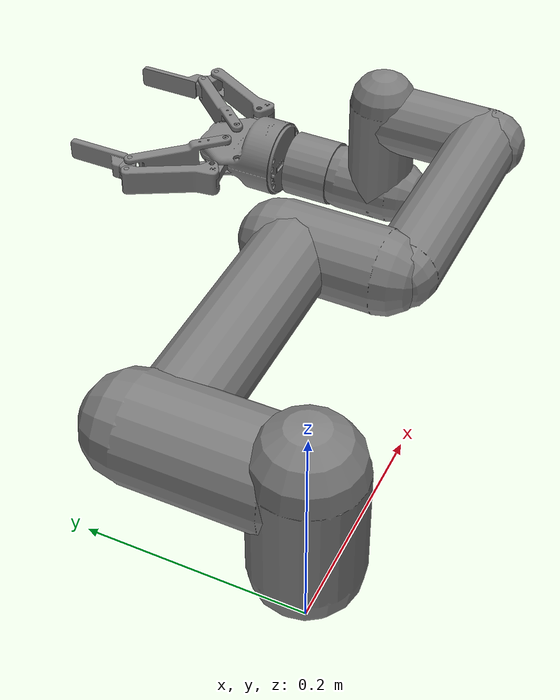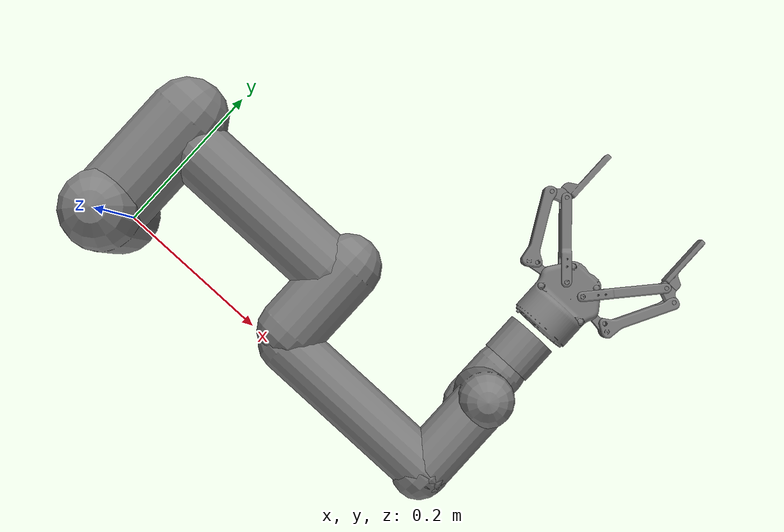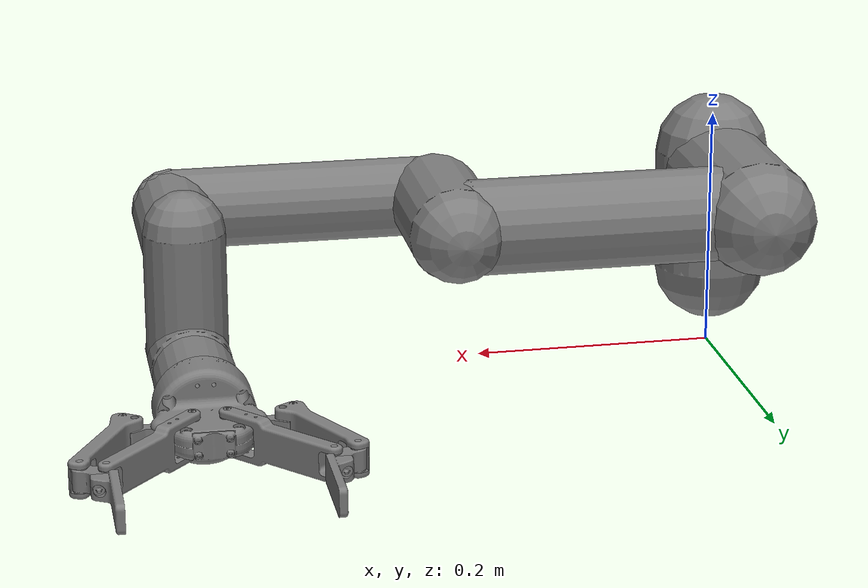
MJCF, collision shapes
<mujoco model="ur3e">
  <compiler angle="radian" meshdir="assets" autolimits="true"/>

  <option integrator="implicitfast"/>

  <default>
    <default class="ur3e">
      <material specular="0.5" shininess="0.25"/>
      <joint axis="0 1 0" range="-6.28319 6.28319" armature="0.1"/>
      <general gaintype="fixed" biastype="affine" ctrlrange="-6.2831 6.2831"/>
      <default class="size2">
        <general  gainprm="1000" biasprm="0 -1000 -200" forcerange="-56 56"/>
      </default>
      <default class="size1">
        <default class="size1_limited">
          <joint range="-3.14159 3.14159"/>
          <general gainprm="500" biasprm="0 -500 -100" ctrlrange="-3.14159 3.14159" forcerange="-28 28"/>
        </default>
      </default>
      <default class="size0">
        <general gainprm="200" biasprm="0 -200 -40" forcerange="-12 12"/>
      </default>
      <default class="visual">
        <geom type="mesh" contype="0" conaffinity="0" group="2"/>
      </default>
      <default class="collision">
        <geom type="capsule" group="3"/>
        <default class="eef_collision">
          <geom type="cylinder"/>
        </default>
      </default>
      <site size="0.001" rgba="0.5 0.5 0.5 0.3" group="4"/>
    </default>

    <default class="2f140">
      <mesh scale="0.001 0.001 0.001"/>
      <general biastype="affine"/>

      <joint axis="0 1 0"/>
      <default class="driver">
        <joint range="0 0.8" armature="0.005" damping="0.1" solimplimit="0.95 0.99 0.001" solreflimit="0.005 1"/>
      </default>
      <default class="follower">
        <joint range="-0.872664 0.872664"  solimplimit="0.95 0.99 0.001" solreflimit="0.005 1"/>
      </default>
      <default class="spring_link">
        <joint range="-0.29670597283 0.8" stiffness="0.05 " springref="2.8" damping="0.125"/>
      </default>
      <default class="coupler">
        <joint range="-1.57 1.57" solimplimit="0.95 0.99 0.001" solreflimit="0.005 1"/>
      </default>

      <default class="visual_gripper">
        <geom type="mesh" contype="0" conaffinity="0" group="2"/>
      </default>
      <default class="collision_gripper">
        <geom type="mesh" group="3"/>
        <default class="pad_box1">
          <geom mass="0" type="box" pos="0 -0.0026 0.028125" size="0.011 0.004 0.009375" friction="0.7"
            solimp="0.95 0.99 0.001" solref="0.004 1" priority="1" rgba="0.55 0.55 0.55 1"/>
        </default>
        <default class="pad_box2">
          <geom mass="0" type="box" pos="0 -0.0026 0.009375" size="0.011 0.004 0.009375" friction="0.6"
            solimp="0.95 0.99 0.001" solref="0.004 1" priority="1" rgba="0.45 0.45 0.45 1"/>
        </default>
      </default>
    </default>

  </default>

  <asset>
    <material class="ur3e" name="black" rgba="0.033 0.033 0.033 1"/>
    <material class="ur3e" name="jointgray" rgba="0.278 0.278 0.278 1"/>
    <material class="ur3e" name="linkgray" rgba="0.82 0.82 0.82 1"/>
    <material class="ur3e" name="urblue" rgba="0.49 0.678 0.8 1"/>

    <mesh file="base_0.obj"/>
    <mesh file="base_1.obj"/>
    <mesh file="shoulder_0.obj"/>
    <mesh file="shoulder_1.obj"/>
    <mesh file="shoulder_2.obj"/>
    <mesh file="upperarm_0.obj"/>
    <mesh file="upperarm_1.obj"/>
    <mesh file="upperarm_2.obj"/>
    <mesh file="upperarm_3.obj"/>
    <mesh file="forearm_0.obj"/>
    <mesh file="forearm_1.obj"/>
    <mesh file="forearm_2.obj"/>
    <mesh file="forearm_3.obj"/>
    <mesh file="wrist1_0.obj"/>
    <mesh file="wrist1_1.obj"/>
    <mesh file="wrist1_2.obj"/>
    <mesh file="wrist2_0.obj"/>
    <mesh file="wrist2_1.obj"/>
    <mesh file="wrist2_2.obj"/>
    <mesh file="wrist3.obj"/>

        <!-- gripper -->
    <material name="metal" specular="0.5" shininess="0.25" rgba="0.58 0.58 0.58 1"/>
    <material name="silicone" specular="0.5" shininess="0.25" rgba="0.1882 0.1882 0.1882 1"/>
    <material name="gray" specular="0.5" shininess="0.25" rgba="0.4627 0.4627 0.4627 1"/>

    <mesh class="2f140" name="base_mount" file="base_mount_zeroed.obj"/>
    <mesh class="2f140" name="base" file="base_zeroed.obj"/>
    <mesh class="2f140" name="driver" file="driver_zeroed.obj"/>
    <mesh class="2f140" name="coupler" file="coupler_zeroed.obj"/>
    <mesh class="2f140" name="follower" file="follower_zeroed.obj"/>
    <mesh class="2f140" name="pad" file="pad_zeroed.obj"/>
    <mesh class="2f140" name="spring_link" file="spring_link_zeroed.obj"/>

  </asset>

  <worldbody>
    <light name="spotlight" mode="targetbodycom" target="wrist_3_link" pos="0 -1 2"/>
    <body name="base" childclass="ur3e">
      <inertial mass="2" pos="0 0 0" diaginertia="0.0030532 0.0030532 0.005625"/>
      <geom mesh="base_0" material="jointgray" class="visual"/>
      <geom mesh="base_1" material="black" class="visual"/>
      <body name="shoulder_link" pos="0 0 0.152">
        <inertial mass="2" pos="0 0 0" diaginertia="0.00809316 0.00809316 0.005625"/>
        <joint name="shoulder_pan_joint" class="size2" axis="0 0 1"/>
        <geom mesh="shoulder_0" material="urblue" class="visual"/>
        <geom mesh="shoulder_1" material="black" class="visual"/>
        <geom mesh="shoulder_2" material="jointgray" class="visual"/>
        <geom class="collision" size="0.047 0.05" pos="0 0 -0.032"/>
        <body name="upper_arm_link" pos="0 0.12 0" quat="1 0 1 0">
          <inertial mass="3.42" pos="0 0 0.122" diaginertia="0.0217285 0.0217285 0.00961875"/>
          <joint name="shoulder_lift_joint" class="size2"/>
          <geom mesh="upperarm_0" material="black" class="visual"/>
          <geom mesh="upperarm_1" material="urblue" class="visual"/>
          <geom mesh="upperarm_2" material="jointgray" class="visual"/>
          <geom mesh="upperarm_3" material="linkgray" class="visual"/>
          <geom class="collision" size="0.046 0.06" pos="0 -0.04 0" quat="1 1 0 0"/>
          <geom class="collision" size="0.038 0.11" pos="0 0 0.12"/>
          <body name="forearm_link" pos="0 -0.093 0.244">
            <inertial mass="1.26" pos="0 0 0.10625" diaginertia="0.00654457 0.00654457 0.00354375"/>
            <joint name="elbow_joint" class="size1_limited"/>
            <geom mesh="forearm_0" material="urblue" class="visual"/>
            <geom mesh="forearm_1" material="linkgray" class="visual"/>
            <geom mesh="forearm_2" material="black" class="visual"/>
            <geom mesh="forearm_3" material="jointgray" class="visual"/>
            <geom class="collision" size="0.038 0.048" pos="0 0.062 0" quat="1 1 0 0"/>
            <geom class="collision" size="0.032 0.103" pos="0 0 0.11"/>
            <body name="wrist_1_link" pos="0.0005 0 0.2125" quat="1 0 1 0">
              <inertial mass="0.8" pos="0 0.104 0" diaginertia="0.00225 0.002085 0.002085"/>
              <joint name="wrist_1_joint" class="size0"/>
              <geom mesh="wrist1_0" material="jointgray" class="visual"/>
              <geom mesh="wrist1_1" material="urblue" class="visual"/>
              <geom mesh="wrist1_2" material="black" class="visual"/>
              <geom class="collision" size="0.032 0.05" pos="0 0.045 0" quat="1 1 0 0"/>
              <body name="wrist_2_link" pos="0 0.104 0">
                <inertial mass="0.8" pos="0 0 0.085" diaginertia="0.00225 0.002085 0.002085"/>
                <joint name="wrist_2_joint" axis="0 0 1"/>
                <geom mesh="wrist2_0" material="jointgray" class="visual"/>
                <geom mesh="wrist2_1" material="black" class="visual"/>
                <geom mesh="wrist2_2" material="urblue" class="visual"/>
                <geom class="collision" size="0.032 0.05" pos="0 0 0.035"/>
                <geom class="collision" size="0.032 0.027" pos="0 0.01 0.085" quat="1 1 0 0"/>
                <body name="wrist_3_link" pos="0 0 0.085">
                  <inertial mass="0.35" pos="0 0.0715 0" quat="1 0 0 1" diaginertia="0.0001792 0.000136267 0.000136267"/>
                  <joint name="wrist_3_joint"/>
                  <geom mesh="wrist3" material="linkgray" class="visual"/>
                  <geom class="eef_collision" size="0.032 0.023" pos="0 0.07 0" quat="1 1 0 0"/>
                  <site name="attachment_site" pos="0 0.09215 0" quat="-1 1 0 0"/>
                </body>

                    <body name="base_mount" pos="0 0.1 0.085" quat="0.7071 -0.7071 0 0" childclass="2f140">
                    <geom class="visual_gripper" mesh="base_mount" material="black"/>
                    <body name="base_gripper" pos="0 0 0.0038" quat="1 0 0 0">
                    <geom class="visual_gripper" mesh="base" material="black"/>
                    <geom class="collision_gripper" mesh="base"/>
                    <site name="pinch" pos="0 0 0.145" type="sphere" group="5" rgba="0.9 0.9 0.9 1" size="0.005"/>

                    <!-- Right-hand side 4-bar linkage -->
                    <!-- driver -->
                    <body name="right_driver" pos=" -0.030601 0 0.054905">
                      <joint name="right_driver_joint" class="driver" pos="0 0 0"/>
                      <geom name="right_driver" class="visual" mesh="driver" material="gray"/>
                      <geom class="collision_gripper" mesh="driver"/>

                      <!-- coupler -->
                        <body name="right_coupler" pos="-0.0315300 0 -0.003733">
                        <geom name="right_coupler" class="visual_gripper" mesh="coupler" material="black"/>
                        <geom class="collision_gripper" mesh="coupler"/>

                            <!-- follower -->
                            <body name="right_follower" pos="-0.015514 0 0.086289">
                                <joint name="right_follower_joint" class="follower"  pos="-0.017901 0 -0.006515"/>
                                <geom name="right_follower" class="visual_gripper" mesh="follower" material="black"/>
                                <geom class="collision_gripper" mesh="follower"/>

                                <!-- pad -->
                                <body name="right_pad" pos="-0.0066 0 0.00625">
                                    <geom name="right_pad" class="visual_gripper" mesh="pad"/>
                                    <geom class="collision_gripper" mesh="pad"/>
                                </body>
                            </body>
                      </body>
                    </body>
                    <!-- spring -->
                    <body name="right_spring_link" pos="-0.012700 0 0.061420">
                      <joint name="right_spring_link_joint" class="spring_link" pos="0 0 0"/>
                      <geom name="right_spring_link" class="visual_gripper" mesh="spring_link" material="black"/>
                      <geom class="collision_gripper" mesh="spring_link"/>
                    </body>

                    <!-- left-hand side 4-bar linkage -->
                    <!-- driver -->
                    <body name="left_driver" pos=" 0.030601 0 0.054905" quat="0 0 0 1">
                      <joint name="left_driver_joint" class="driver" pos="0 0 0" axis="0 1 0"  />
                      <geom name="left_driver" class="visual_gripper" mesh="driver" material="gray" quat="1 0 0 0"/>
                      <geom class="collision_gripper" mesh="driver"/>

                      <!-- coupler -->
                      <body name="left_coupler" pos="-0.0315300 0 -0.003733" quat="1 0 0 0">
                        <geom name="left_coupler" class="visual_gripper" mesh="coupler" material="black" quat="1 0 0 0"/>
                        <geom class="collision_gripper" mesh="coupler"/>

                        <!-- follower -->
                        <body name="left_follower" pos="-0.015514 0 0.086289" quat="1 0 0 0">
                            <joint name="left_follower_joint" class="follower"  pos="-0.017901 0 -0.006515" axis="0 1 0"/>
                            <geom name="left_follower" class="visual_gripper" mesh="follower" material="black" quat="1 0 0 0"/>
                            <geom class="collision_gripper" mesh="follower"/>

                            <body name="left_pad" pos="-0.0066 0 0.00625" quat="1 0 0 0">
                                <geom name="left_pad" class="visual_gripper" mesh="pad" quat="1 0 0 0"/>
                                <geom class="collision_gripper" mesh="pad"/>
                            </body>
                      </body>

                      </body>
                    </body>
                    <!-- spring -->
                    <body name="left_spring_link" pos="0.012700 0 0.061420" quat="0 0 0 1">
                      <joint name="left_spring_link_joint" class="spring_link" pos="0 0 0" axis="0 1 0"/>
                      <geom name="left_spring_link" class="visual_gripper" mesh="spring_link" material="black" quat="1 0 0 0"/>
                      <geom class="collision_gripper" mesh="spring_link"/>
                    </body>

                  </body>
                </body>
              </body>
            </body>
          </body>
        </body>
      </body>
    </body>
  </worldbody>

  <actuator>
    <general class="size2" name="shoulder_pan" joint="shoulder_pan_joint"/>
    <general class="size2" name="shoulder_lift" joint="shoulder_lift_joint"/>
    <general class="size1_limited" name="elbow" joint="elbow_joint"/>
    <general class="size0" name="wrist_1" joint="wrist_1_joint"/>
    <general class="size0" name="wrist_2" joint="wrist_2_joint"/>
    <general class="size0" name="wrist_3" joint="wrist_3_joint"/>
    <general class="2f140" name="fingers_actuator" tendon="split" forcerange="-5 5" ctrlrange="0 255" gainprm="0.3137255 0 0" biasprm="0 -100 -10"/>
  </actuator>

    <!-- gripper tendon -->
  <tendon>
    <fixed name="split">
      <joint joint="right_driver_joint" coef="0.5"/>
      <joint joint="left_driver_joint" coef="0.5"/>
    </fixed>
  </tendon>
  <!--gripper anchors for closed linkage -->
  <equality>
    <connect anchor="-0.0 0 0.0" body1="right_follower" body2="right_spring_link" solimp="0.95 0.99 0.001" solref="0.005 1" active="true"/>
    <connect anchor="-0.0 0 0.0" body1="left_follower" body2="left_spring_link" solimp="0.95 0.99 0.001" solref="0.005 1" active="true"/>
    <joint joint1="right_driver_joint" joint2="left_driver_joint" polycoef="0 1 0 0 0" solimp="0.95 0.99 0.001" solref="0.005 1"/>
  </equality>

  <keyframe>
    <key name="home" qpos="-1.5708 -1.5708 1.5708 -1.5708 -1.5708 0 0 0 0 0 0 0"
        ctrl="-1.5708 -1.5708 1.5708 -1.5708 -1.5708 0 0"/>
  </keyframe>
</mujoco>
